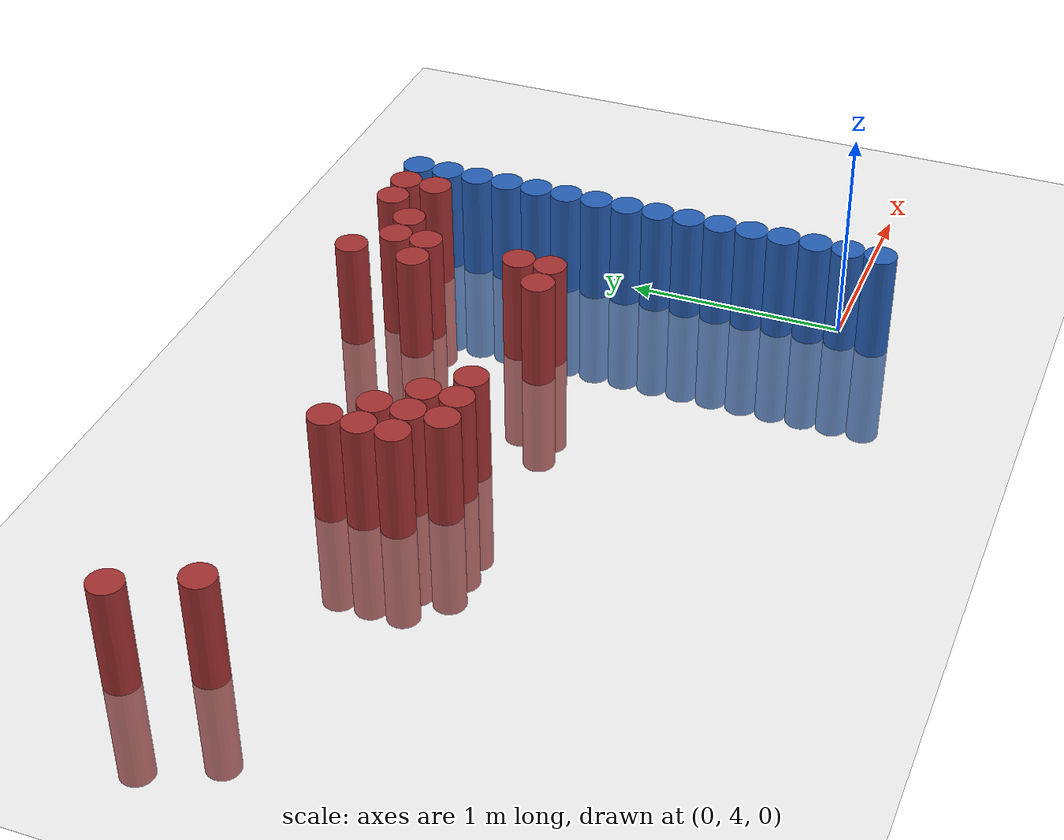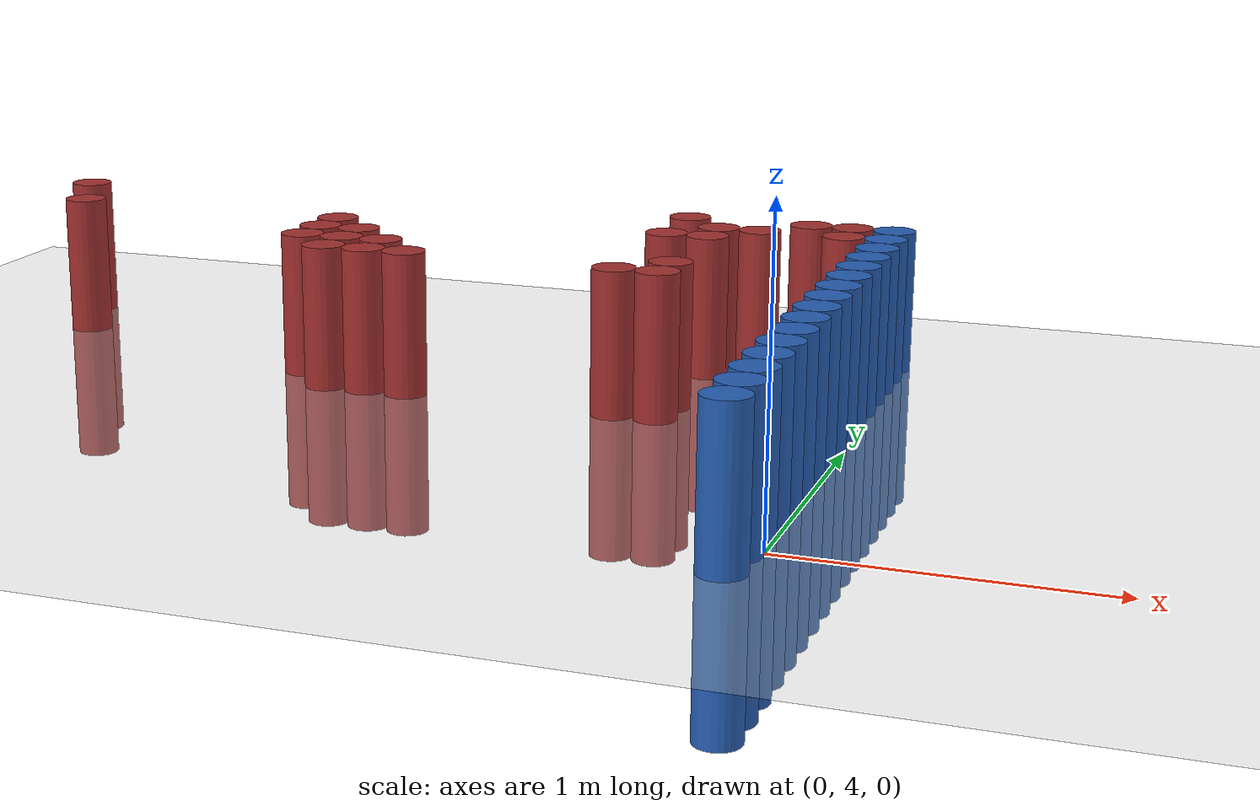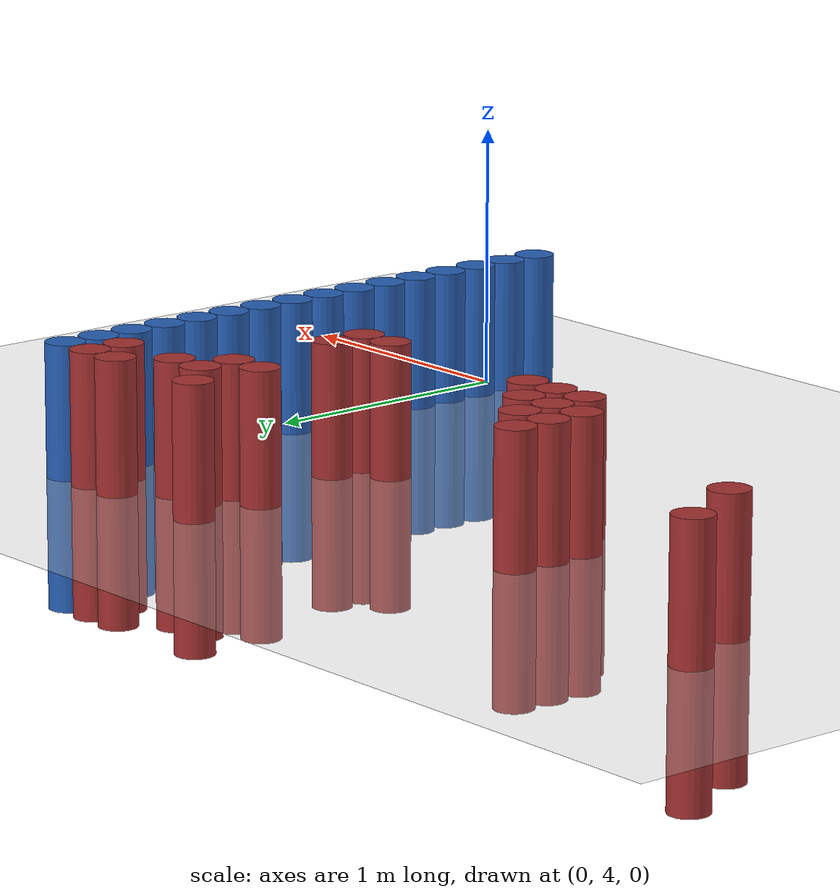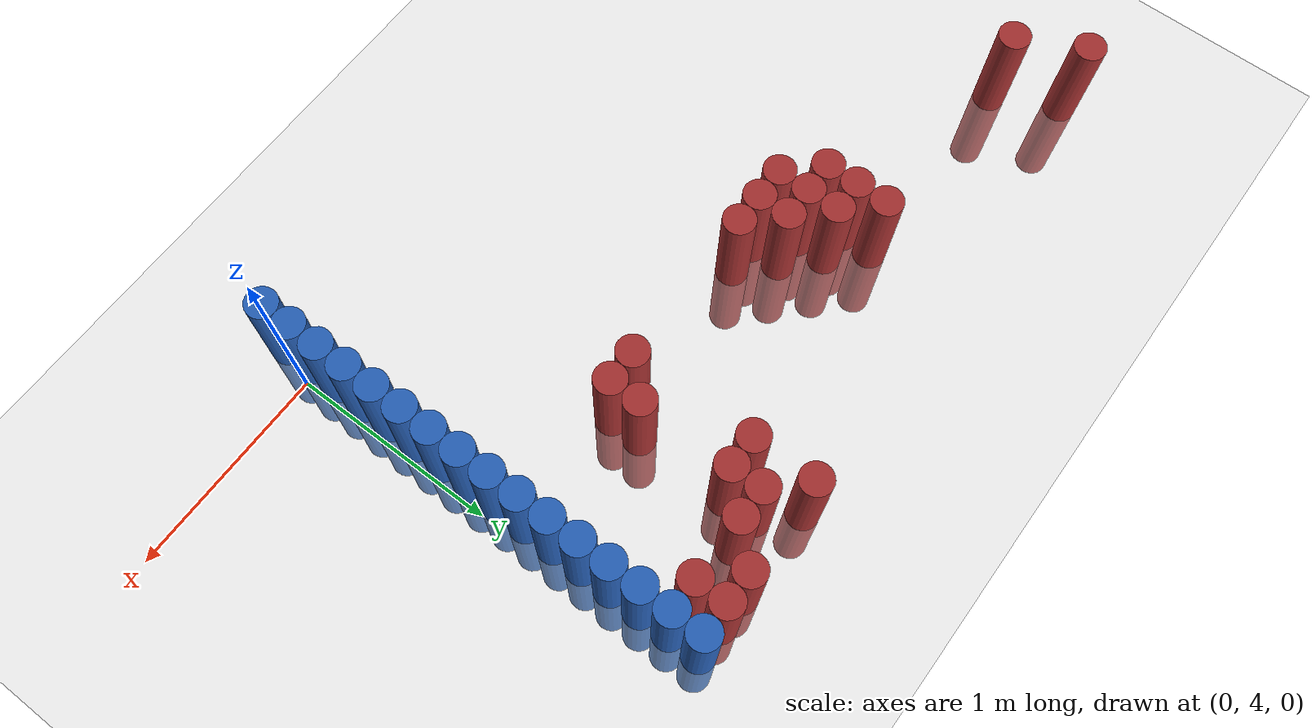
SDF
<sdf version="1.6">
 <world name="default">
  <model name="ground_plane">
   <static>1</static>
   <link name="link">
    <collision name="collision">
     <geometry><plane><normal>0 0 1</normal><size>100 100</size></plane></geometry>
     <surface><friction><ode><mu>100</mu><mu2>50</mu2></ode></friction></surface>
    </collision>
    <visual name="visual">
     <cast_shadows>0</cast_shadows>
     <geometry><plane><normal>0 0 1</normal><size>100 100</size></plane></geometry>
     <material>
      <script><uri>file://media/materials/scripts/gazebo.material</uri><name>Gazebo/Grey</name></script>
     </material>
    </visual>
   </link>
  </model>
  <model name="unit_cylinder_78">
   <static>1</static>
   <pose>-0.075000 3.825000 0.000000 0.000000 0.000000 0.000000</pose>
   <link name="link">
    <inertial>
     <mass>1</mass>
     <inertia><ixx>0.145833</ixx><ixy>0</ixy><ixz>0</ixz><iyy>0.145833</iyy><iyz>0</iyz><izz>0.125</izz></inertia>
    </inertial>
    <collision name="collision">
     <geometry><cylinder><radius>0.075000</radius><length>1</length></cylinder></geometry>
    </collision>
    <visual name="visual">
     <geometry><cylinder><radius>0.075000</radius><length>1</length></cylinder></geometry>
     <material>
      <ambient>0.152000 0.379000 0.720000 1</ambient>
      <diffuse>0.152000 0.379000 0.720000 1</diffuse>
     </material>
     <material>
      <script><name>Gazebo/Grey</name><uri>file://media/materials/scripts/gazebo.material</uri></script>
     </material>
    </visual>
    <sensor name="sensor_contact" type="contact"><contact><collision>collision</collision></contact></sensor>
   </link>
   <plugin filename="gz-sim-touchplugin-system" name="gz::sim::systems::TouchPlugin">
    <target>robot</target>
    <namespace>robot</namespace>
    <time>0.001</time>
    <enabled>true</enabled>
   </plugin>
  </model>
  <model name="unit_cylinder_80">
   <static>1</static>
   <pose>-0.075000 3.975000 0.000000 0.000000 0.000000 0.000000</pose>
   <link name="link">
    <inertial>
     <mass>1</mass>
     <inertia><ixx>0.145833</ixx><ixy>0</ixy><ixz>0</ixz><iyy>0.145833</iyy><iyz>0</iyz><izz>0.125</izz></inertia>
    </inertial>
    <collision name="collision">
     <geometry><cylinder><radius>0.075000</radius><length>1</length></cylinder></geometry>
    </collision>
    <visual name="visual">
     <geometry><cylinder><radius>0.075000</radius><length>1</length></cylinder></geometry>
     <material>
      <ambient>0.152000 0.379000 0.720000 1</ambient>
      <diffuse>0.152000 0.379000 0.720000 1</diffuse>
     </material>
     <material>
      <script><name>Gazebo/Grey</name><uri>file://media/materials/scripts/gazebo.material</uri></script>
     </material>
    </visual>
    <sensor name="sensor_contact" type="contact"><contact><collision>collision</collision></contact></sensor>
   </link>
   <plugin filename="gz-sim-touchplugin-system" name="gz::sim::systems::TouchPlugin">
    <target>robot</target>
    <namespace>robot</namespace>
    <time>0.001</time>
    <enabled>true</enabled>
   </plugin>
  </model>
  <model name="unit_cylinder_82">
   <static>1</static>
   <pose>-0.075000 4.125000 0.000000 0.000000 0.000000 0.000000</pose>
   <link name="link">
    <inertial>
     <mass>1</mass>
     <inertia><ixx>0.145833</ixx><ixy>0</ixy><ixz>0</ixz><iyy>0.145833</iyy><iyz>0</iyz><izz>0.125</izz></inertia>
    </inertial>
    <collision name="collision">
     <geometry><cylinder><radius>0.075000</radius><length>1</length></cylinder></geometry>
    </collision>
    <visual name="visual">
     <geometry><cylinder><radius>0.075000</radius><length>1</length></cylinder></geometry>
     <material>
      <ambient>0.152000 0.379000 0.720000 1</ambient>
      <diffuse>0.152000 0.379000 0.720000 1</diffuse>
     </material>
     <material>
      <script><name>Gazebo/Grey</name><uri>file://media/materials/scripts/gazebo.material</uri></script>
     </material>
    </visual>
    <sensor name="sensor_contact" type="contact"><contact><collision>collision</collision></contact></sensor>
   </link>
   <plugin filename="gz-sim-touchplugin-system" name="gz::sim::systems::TouchPlugin">
    <target>robot</target>
    <namespace>robot</namespace>
    <time>0.001</time>
    <enabled>true</enabled>
   </plugin>
  </model>
  <model name="unit_cylinder_84">
   <static>1</static>
   <pose>-0.075000 4.275000 0.000000 0.000000 0.000000 0.000000</pose>
   <link name="link">
    <inertial>
     <mass>1</mass>
     <inertia><ixx>0.145833</ixx><ixy>0</ixy><ixz>0</ixz><iyy>0.145833</iyy><iyz>0</iyz><izz>0.125</izz></inertia>
    </inertial>
    <collision name="collision">
     <geometry><cylinder><radius>0.075000</radius><length>1</length></cylinder></geometry>
    </collision>
    <visual name="visual">
     <geometry><cylinder><radius>0.075000</radius><length>1</length></cylinder></geometry>
     <material>
      <ambient>0.152000 0.379000 0.720000 1</ambient>
      <diffuse>0.152000 0.379000 0.720000 1</diffuse>
     </material>
     <material>
      <script><name>Gazebo/Grey</name><uri>file://media/materials/scripts/gazebo.material</uri></script>
     </material>
    </visual>
    <sensor name="sensor_contact" type="contact"><contact><collision>collision</collision></contact></sensor>
   </link>
   <plugin filename="gz-sim-touchplugin-system" name="gz::sim::systems::TouchPlugin">
    <target>robot</target>
    <namespace>robot</namespace>
    <time>0.001</time>
    <enabled>true</enabled>
   </plugin>
  </model>
  <model name="unit_cylinder_86">
   <static>1</static>
   <pose>-0.075000 4.425000 0.000000 0.000000 0.000000 0.000000</pose>
   <link name="link">
    <inertial>
     <mass>1</mass>
     <inertia><ixx>0.145833</ixx><ixy>0</ixy><ixz>0</ixz><iyy>0.145833</iyy><iyz>0</iyz><izz>0.125</izz></inertia>
    </inertial>
    <collision name="collision">
     <geometry><cylinder><radius>0.075000</radius><length>1</length></cylinder></geometry>
    </collision>
    <visual name="visual">
     <geometry><cylinder><radius>0.075000</radius><length>1</length></cylinder></geometry>
     <material>
      <ambient>0.152000 0.379000 0.720000 1</ambient>
      <diffuse>0.152000 0.379000 0.720000 1</diffuse>
     </material>
     <material>
      <script><name>Gazebo/Grey</name><uri>file://media/materials/scripts/gazebo.material</uri></script>
     </material>
    </visual>
    <sensor name="sensor_contact" type="contact"><contact><collision>collision</collision></contact></sensor>
   </link>
   <plugin filename="gz-sim-touchplugin-system" name="gz::sim::systems::TouchPlugin">
    <target>robot</target>
    <namespace>robot</namespace>
    <time>0.001</time>
    <enabled>true</enabled>
   </plugin>
  </model>
  <model name="unit_cylinder_88">
   <static>1</static>
   <pose>-0.075000 4.575000 0.000000 0.000000 0.000000 0.000000</pose>
   <link name="link">
    <inertial>
     <mass>1</mass>
     <inertia><ixx>0.145833</ixx><ixy>0</ixy><ixz>0</ixz><iyy>0.145833</iyy><iyz>0</iyz><izz>0.125</izz></inertia>
    </inertial>
    <collision name="collision">
     <geometry><cylinder><radius>0.075000</radius><length>1</length></cylinder></geometry>
    </collision>
    <visual name="visual">
     <geometry><cylinder><radius>0.075000</radius><length>1</length></cylinder></geometry>
     <material>
      <ambient>0.152000 0.379000 0.720000 1</ambient>
      <diffuse>0.152000 0.379000 0.720000 1</diffuse>
     </material>
     <material>
      <script><name>Gazebo/Grey</name><uri>file://media/materials/scripts/gazebo.material</uri></script>
     </material>
    </visual>
    <sensor name="sensor_contact" type="contact"><contact><collision>collision</collision></contact></sensor>
   </link>
   <plugin filename="gz-sim-touchplugin-system" name="gz::sim::systems::TouchPlugin">
    <target>robot</target>
    <namespace>robot</namespace>
    <time>0.001</time>
    <enabled>true</enabled>
   </plugin>
  </model>
  <model name="unit_cylinder_90">
   <static>1</static>
   <pose>-0.075000 4.725000 0.000000 0.000000 0.000000 0.000000</pose>
   <link name="link">
    <inertial>
     <mass>1</mass>
     <inertia><ixx>0.145833</ixx><ixy>0</ixy><ixz>0</ixz><iyy>0.145833</iyy><iyz>0</iyz><izz>0.125</izz></inertia>
    </inertial>
    <collision name="collision">
     <geometry><cylinder><radius>0.075000</radius><length>1</length></cylinder></geometry>
    </collision>
    <visual name="visual">
     <geometry><cylinder><radius>0.075000</radius><length>1</length></cylinder></geometry>
     <material>
      <ambient>0.152000 0.379000 0.720000 1</ambient>
      <diffuse>0.152000 0.379000 0.720000 1</diffuse>
     </material>
     <material>
      <script><name>Gazebo/Grey</name><uri>file://media/materials/scripts/gazebo.material</uri></script>
     </material>
    </visual>
    <sensor name="sensor_contact" type="contact"><contact><collision>collision</collision></contact></sensor>
   </link>
   <plugin filename="gz-sim-touchplugin-system" name="gz::sim::systems::TouchPlugin">
    <target>robot</target>
    <namespace>robot</namespace>
    <time>0.001</time>
    <enabled>true</enabled>
   </plugin>
  </model>
  <model name="unit_cylinder_92">
   <static>1</static>
   <pose>-0.075000 4.875000 0.000000 0.000000 0.000000 0.000000</pose>
   <link name="link">
    <inertial>
     <mass>1</mass>
     <inertia><ixx>0.145833</ixx><ixy>0</ixy><ixz>0</ixz><iyy>0.145833</iyy><iyz>0</iyz><izz>0.125</izz></inertia>
    </inertial>
    <collision name="collision">
     <geometry><cylinder><radius>0.075000</radius><length>1</length></cylinder></geometry>
    </collision>
    <visual name="visual">
     <geometry><cylinder><radius>0.075000</radius><length>1</length></cylinder></geometry>
     <material>
      <ambient>0.152000 0.379000 0.720000 1</ambient>
      <diffuse>0.152000 0.379000 0.720000 1</diffuse>
     </material>
     <material>
      <script><name>Gazebo/Grey</name><uri>file://media/materials/scripts/gazebo.material</uri></script>
     </material>
    </visual>
    <sensor name="sensor_contact" type="contact"><contact><collision>collision</collision></contact></sensor>
   </link>
   <plugin filename="gz-sim-touchplugin-system" name="gz::sim::systems::TouchPlugin">
    <target>robot</target>
    <namespace>robot</namespace>
    <time>0.001</time>
    <enabled>true</enabled>
   </plugin>
  </model>
  <model name="unit_cylinder_94">
   <static>1</static>
   <pose>-0.075000 5.025000 0.000000 0.000000 0.000000 0.000000</pose>
   <link name="link">
    <inertial>
     <mass>1</mass>
     <inertia><ixx>0.145833</ixx><ixy>0</ixy><ixz>0</ixz><iyy>0.145833</iyy><iyz>0</iyz><izz>0.125</izz></inertia>
    </inertial>
    <collision name="collision">
     <geometry><cylinder><radius>0.075000</radius><length>1</length></cylinder></geometry>
    </collision>
    <visual name="visual">
     <geometry><cylinder><radius>0.075000</radius><length>1</length></cylinder></geometry>
     <material>
      <ambient>0.152000 0.379000 0.720000 1</ambient>
      <diffuse>0.152000 0.379000 0.720000 1</diffuse>
     </material>
     <material>
      <script><name>Gazebo/Grey</name><uri>file://media/materials/scripts/gazebo.material</uri></script>
     </material>
    </visual>
    <sensor name="sensor_contact" type="contact"><contact><collision>collision</collision></contact></sensor>
   </link>
   <plugin filename="gz-sim-touchplugin-system" name="gz::sim::systems::TouchPlugin">
    <target>robot</target>
    <namespace>robot</namespace>
    <time>0.001</time>
    <enabled>true</enabled>
   </plugin>
  </model>
  <model name="unit_cylinder_200">
   <static>1</static>
   <pose>-3.225000 5.925000 0.000000 0.000000 0.000000 0.000000</pose>
   <link name="link">
    <inertial>
     <mass>1</mass>
     <inertia><ixx>0.145833</ixx><ixy>0</ixy><ixz>0</ixz><iyy>0.145833</iyy><iyz>0</iyz><izz>0.125</izz></inertia>
    </inertial>
    <collision name="collision">
     <geometry><cylinder><radius>0.075000</radius><length>1</length></cylinder></geometry>
    </collision>
    <visual name="visual">
     <geometry><cylinder><radius>0.075000</radius><length>1</length></cylinder></geometry>
     <material>
      <ambient>0.648000 0.192000 0.192000 1</ambient>
      <diffuse>0.648000 0.192000 0.192000 1</diffuse>
     </material>
     <material>
      <script><name>Gazebo/Grey</name><uri>file://media/materials/scripts/gazebo.material</uri></script>
     </material>
    </visual>
    <sensor name="sensor_contact" type="contact"><contact><collision>collision</collision></contact></sensor>
   </link>
   <plugin filename="gz-sim-touchplugin-system" name="gz::sim::systems::TouchPlugin">
    <target>robot</target>
    <namespace>robot</namespace>
    <time>0.001</time>
    <enabled>true</enabled>
   </plugin>
  </model>
  <model name="unit_cylinder_207">
   <static>1</static>
   <pose>-3.075000 5.625000 0.000000 0.000000 0.000000 0.000000</pose>
   <link name="link">
    <inertial>
     <mass>1</mass>
     <inertia><ixx>0.145833</ixx><ixy>0</ixy><ixz>0</ixz><iyy>0.145833</iyy><iyz>0</iyz><izz>0.125</izz></inertia>
    </inertial>
    <collision name="collision">
     <geometry><cylinder><radius>0.075000</radius><length>1</length></cylinder></geometry>
    </collision>
    <visual name="visual">
     <geometry><cylinder><radius>0.075000</radius><length>1</length></cylinder></geometry>
     <material>
      <ambient>0.648000 0.192000 0.192000 1</ambient>
      <diffuse>0.648000 0.192000 0.192000 1</diffuse>
     </material>
     <material>
      <script><name>Gazebo/Grey</name><uri>file://media/materials/scripts/gazebo.material</uri></script>
     </material>
    </visual>
    <sensor name="sensor_contact" type="contact"><contact><collision>collision</collision></contact></sensor>
   </link>
   <plugin filename="gz-sim-touchplugin-system" name="gz::sim::systems::TouchPlugin">
    <target>robot</target>
    <namespace>robot</namespace>
    <time>0.001</time>
    <enabled>true</enabled>
   </plugin>
  </model>
  <model name="unit_cylinder_220">
   <static>1</static>
   <pose>-2.025000 5.325000 0.000000 0.000000 0.000000 0.000000</pose>
   <link name="link">
    <inertial>
     <mass>1</mass>
     <inertia><ixx>0.145833</ixx><ixy>0</ixy><ixz>0</ixz><iyy>0.145833</iyy><iyz>0</iyz><izz>0.125</izz></inertia>
    </inertial>
    <collision name="collision">
     <geometry><cylinder><radius>0.075000</radius><length>1</length></cylinder></geometry>
    </collision>
    <visual name="visual">
     <geometry><cylinder><radius>0.075000</radius><length>1</length></cylinder></geometry>
     <material>
      <ambient>0.648000 0.192000 0.192000 1</ambient>
      <diffuse>0.648000 0.192000 0.192000 1</diffuse>
     </material>
     <material>
      <script><name>Gazebo/Grey</name><uri>file://media/materials/scripts/gazebo.material</uri></script>
     </material>
    </visual>
    <sensor name="sensor_contact" type="contact"><contact><collision>collision</collision></contact></sensor>
   </link>
   <plugin filename="gz-sim-touchplugin-system" name="gz::sim::systems::TouchPlugin">
    <target>robot</target>
    <namespace>robot</namespace>
    <time>0.001</time>
    <enabled>true</enabled>
   </plugin>
  </model>
  <model name="unit_cylinder_221">
   <static>1</static>
   <pose>-2.025000 5.475000 0.000000 0.000000 0.000000 0.000000</pose>
   <link name="link">
    <inertial>
     <mass>1</mass>
     <inertia><ixx>0.145833</ixx><ixy>0</ixy><ixz>0</ixz><iyy>0.145833</iyy><iyz>0</iyz><izz>0.125</izz></inertia>
    </inertial>
    <collision name="collision">
     <geometry><cylinder><radius>0.075000</radius><length>1</length></cylinder></geometry>
    </collision>
    <visual name="visual">
     <geometry><cylinder><radius>0.075000</radius><length>1</length></cylinder></geometry>
     <material>
      <ambient>0.648000 0.192000 0.192000 1</ambient>
      <diffuse>0.648000 0.192000 0.192000 1</diffuse>
     </material>
     <material>
      <script><name>Gazebo/Grey</name><uri>file://media/materials/scripts/gazebo.material</uri></script>
     </material>
    </visual>
    <sensor name="sensor_contact" type="contact"><contact><collision>collision</collision></contact></sensor>
   </link>
   <plugin filename="gz-sim-touchplugin-system" name="gz::sim::systems::TouchPlugin">
    <target>robot</target>
    <namespace>robot</namespace>
    <time>0.001</time>
    <enabled>true</enabled>
   </plugin>
  </model>
  <model name="unit_cylinder_222">
   <static>1</static>
   <pose>-2.025000 5.625000 0.000000 0.000000 0.000000 0.000000</pose>
   <link name="link">
    <inertial>
     <mass>1</mass>
     <inertia><ixx>0.145833</ixx><ixy>0</ixy><ixz>0</ixz><iyy>0.145833</iyy><iyz>0</iyz><izz>0.125</izz></inertia>
    </inertial>
    <collision name="collision">
     <geometry><cylinder><radius>0.075000</radius><length>1</length></cylinder></geometry>
    </collision>
    <visual name="visual">
     <geometry><cylinder><radius>0.075000</radius><length>1</length></cylinder></geometry>
     <material>
      <ambient>0.648000 0.192000 0.192000 1</ambient>
      <diffuse>0.648000 0.192000 0.192000 1</diffuse>
     </material>
     <material>
      <script><name>Gazebo/Grey</name><uri>file://media/materials/scripts/gazebo.material</uri></script>
     </material>
    </visual>
    <sensor name="sensor_contact" type="contact"><contact><collision>collision</collision></contact></sensor>
   </link>
   <plugin filename="gz-sim-touchplugin-system" name="gz::sim::systems::TouchPlugin">
    <target>robot</target>
    <namespace>robot</namespace>
    <time>0.001</time>
    <enabled>true</enabled>
   </plugin>
  </model>
  <model name="unit_cylinder_224">
   <static>1</static>
   <pose>-1.875000 5.175000 0.000000 0.000000 0.000000 0.000000</pose>
   <link name="link">
    <inertial>
     <mass>1</mass>
     <inertia><ixx>0.145833</ixx><ixy>0</ixy><ixz>0</ixz><iyy>0.145833</iyy><iyz>0</iyz><izz>0.125</izz></inertia>
    </inertial>
    <collision name="collision">
     <geometry><cylinder><radius>0.075000</radius><length>1</length></cylinder></geometry>
    </collision>
    <visual name="visual">
     <geometry><cylinder><radius>0.075000</radius><length>1</length></cylinder></geometry>
     <material>
      <ambient>0.648000 0.192000 0.192000 1</ambient>
      <diffuse>0.648000 0.192000 0.192000 1</diffuse>
     </material>
     <material>
      <script><name>Gazebo/Grey</name><uri>file://media/materials/scripts/gazebo.material</uri></script>
     </material>
    </visual>
    <sensor name="sensor_contact" type="contact"><contact><collision>collision</collision></contact></sensor>
   </link>
   <plugin filename="gz-sim-touchplugin-system" name="gz::sim::systems::TouchPlugin">
    <target>robot</target>
    <namespace>robot</namespace>
    <time>0.001</time>
    <enabled>true</enabled>
   </plugin>
  </model>
  <model name="unit_cylinder_225">
   <static>1</static>
   <pose>-1.875000 5.325000 0.000000 0.000000 0.000000 0.000000</pose>
   <link name="link">
    <inertial>
     <mass>1</mass>
     <inertia><ixx>0.145833</ixx><ixy>0</ixy><ixz>0</ixz><iyy>0.145833</iyy><iyz>0</iyz><izz>0.125</izz></inertia>
    </inertial>
    <collision name="collision">
     <geometry><cylinder><radius>0.075000</radius><length>1</length></cylinder></geometry>
    </collision>
    <visual name="visual">
     <geometry><cylinder><radius>0.075000</radius><length>1</length></cylinder></geometry>
     <material>
      <ambient>0.648000 0.192000 0.192000 1</ambient>
      <diffuse>0.648000 0.192000 0.192000 1</diffuse>
     </material>
     <material>
      <script><name>Gazebo/Grey</name><uri>file://media/materials/scripts/gazebo.material</uri></script>
     </material>
    </visual>
    <sensor name="sensor_contact" type="contact"><contact><collision>collision</collision></contact></sensor>
   </link>
   <plugin filename="gz-sim-touchplugin-system" name="gz::sim::systems::TouchPlugin">
    <target>robot</target>
    <namespace>robot</namespace>
    <time>0.001</time>
    <enabled>true</enabled>
   </plugin>
  </model>
  <model name="unit_cylinder_226">
   <static>1</static>
   <pose>-1.875000 5.475000 0.000000 0.000000 0.000000 0.000000</pose>
   <link name="link">
    <inertial>
     <mass>1</mass>
     <inertia><ixx>0.145833</ixx><ixy>0</ixy><ixz>0</ixz><iyy>0.145833</iyy><iyz>0</iyz><izz>0.125</izz></inertia>
    </inertial>
    <collision name="collision">
     <geometry><cylinder><radius>0.075000</radius><length>1</length></cylinder></geometry>
    </collision>
    <visual name="visual">
     <geometry><cylinder><radius>0.075000</radius><length>1</length></cylinder></geometry>
     <material>
      <ambient>0.648000 0.192000 0.192000 1</ambient>
      <diffuse>0.648000 0.192000 0.192000 1</diffuse>
     </material>
     <material>
      <script><name>Gazebo/Grey</name><uri>file://media/materials/scripts/gazebo.material</uri></script>
     </material>
    </visual>
    <sensor name="sensor_contact" type="contact"><contact><collision>collision</collision></contact></sensor>
   </link>
   <plugin filename="gz-sim-touchplugin-system" name="gz::sim::systems::TouchPlugin">
    <target>robot</target>
    <namespace>robot</namespace>
    <time>0.001</time>
    <enabled>true</enabled>
   </plugin>
  </model>
  <model name="unit_cylinder_231">
   <static>1</static>
   <pose>-1.725000 5.175000 0.000000 0.000000 0.000000 0.000000</pose>
   <link name="link">
    <inertial>
     <mass>1</mass>
     <inertia><ixx>0.145833</ixx><ixy>0</ixy><ixz>0</ixz><iyy>0.145833</iyy><iyz>0</iyz><izz>0.125</izz></inertia>
    </inertial>
    <collision name="collision">
     <geometry><cylinder><radius>0.075000</radius><length>1</length></cylinder></geometry>
    </collision>
    <visual name="visual">
     <geometry><cylinder><radius>0.075000</radius><length>1</length></cylinder></geometry>
     <material>
      <ambient>0.648000 0.192000 0.192000 1</ambient>
      <diffuse>0.648000 0.192000 0.192000 1</diffuse>
     </material>
     <material>
      <script><name>Gazebo/Grey</name><uri>file://media/materials/scripts/gazebo.material</uri></script>
     </material>
    </visual>
    <sensor name="sensor_contact" type="contact"><contact><collision>collision</collision></contact></sensor>
   </link>
   <plugin filename="gz-sim-touchplugin-system" name="gz::sim::systems::TouchPlugin">
    <target>robot</target>
    <namespace>robot</namespace>
    <time>0.001</time>
    <enabled>true</enabled>
   </plugin>
  </model>
  <model name="unit_cylinder_232">
   <static>1</static>
   <pose>-1.725000 5.325000 0.000000 0.000000 0.000000 0.000000</pose>
   <link name="link">
    <inertial>
     <mass>1</mass>
     <inertia><ixx>0.145833</ixx><ixy>0</ixy><ixz>0</ixz><iyy>0.145833</iyy><iyz>0</iyz><izz>0.125</izz></inertia>
    </inertial>
    <collision name="collision">
     <geometry><cylinder><radius>0.075000</radius><length>1</length></cylinder></geometry>
    </collision>
    <visual name="visual">
     <geometry><cylinder><radius>0.075000</radius><length>1</length></cylinder></geometry>
     <material>
      <ambient>0.648000 0.192000 0.192000 1</ambient>
      <diffuse>0.648000 0.192000 0.192000 1</diffuse>
     </material>
     <material>
      <script><name>Gazebo/Grey</name><uri>file://media/materials/scripts/gazebo.material</uri></script>
     </material>
    </visual>
    <sensor name="sensor_contact" type="contact"><contact><collision>collision</collision></contact></sensor>
   </link>
   <plugin filename="gz-sim-touchplugin-system" name="gz::sim::systems::TouchPlugin">
    <target>robot</target>
    <namespace>robot</namespace>
    <time>0.001</time>
    <enabled>true</enabled>
   </plugin>
  </model>
  <model name="unit_cylinder_238">
   <static>1</static>
   <pose>-1.575000 5.175000 0.000000 0.000000 0.000000 0.000000</pose>
   <link name="link">
    <inertial>
     <mass>1</mass>
     <inertia><ixx>0.145833</ixx><ixy>0</ixy><ixz>0</ixz><iyy>0.145833</iyy><iyz>0</iyz><izz>0.125</izz></inertia>
    </inertial>
    <collision name="collision">
     <geometry><cylinder><radius>0.075000</radius><length>1</length></cylinder></geometry>
    </collision>
    <visual name="visual">
     <geometry><cylinder><radius>0.075000</radius><length>1</length></cylinder></geometry>
     <material>
      <ambient>0.648000 0.192000 0.192000 1</ambient>
      <diffuse>0.648000 0.192000 0.192000 1</diffuse>
     </material>
     <material>
      <script><name>Gazebo/Grey</name><uri>file://media/materials/scripts/gazebo.material</uri></script>
     </material>
    </visual>
    <sensor name="sensor_contact" type="contact"><contact><collision>collision</collision></contact></sensor>
   </link>
   <plugin filename="gz-sim-touchplugin-system" name="gz::sim::systems::TouchPlugin">
    <target>robot</target>
    <namespace>robot</namespace>
    <time>0.001</time>
    <enabled>true</enabled>
   </plugin>
  </model>
  <model name="unit_cylinder_273">
   <static>1</static>
   <pose>-0.825000 5.175000 0.000000 0.000000 0.000000 0.000000</pose>
   <link name="link">
    <inertial>
     <mass>1</mass>
     <inertia><ixx>0.145833</ixx><ixy>0</ixy><ixz>0</ixz><iyy>0.145833</iyy><iyz>0</iyz><izz>0.125</izz></inertia>
    </inertial>
    <collision name="collision">
     <geometry><cylinder><radius>0.075000</radius><length>1</length></cylinder></geometry>
    </collision>
    <visual name="visual">
     <geometry><cylinder><radius>0.075000</radius><length>1</length></cylinder></geometry>
     <material>
      <ambient>0.648000 0.192000 0.192000 1</ambient>
      <diffuse>0.648000 0.192000 0.192000 1</diffuse>
     </material>
     <material>
      <script><name>Gazebo/Grey</name><uri>file://media/materials/scripts/gazebo.material</uri></script>
     </material>
    </visual>
    <sensor name="sensor_contact" type="contact"><contact><collision>collision</collision></contact></sensor>
   </link>
   <plugin filename="gz-sim-touchplugin-system" name="gz::sim::systems::TouchPlugin">
    <target>robot</target>
    <namespace>robot</namespace>
    <time>0.001</time>
    <enabled>true</enabled>
   </plugin>
  </model>
  <model name="unit_cylinder_274">
   <static>1</static>
   <pose>-0.825000 5.775000 0.000000 0.000000 0.000000 0.000000</pose>
   <link name="link">
    <inertial>
     <mass>1</mass>
     <inertia><ixx>0.145833</ixx><ixy>0</ixy><ixz>0</ixz><iyy>0.145833</iyy><iyz>0</iyz><izz>0.125</izz></inertia>
    </inertial>
    <collision name="collision">
     <geometry><cylinder><radius>0.075000</radius><length>1</length></cylinder></geometry>
    </collision>
    <visual name="visual">
     <geometry><cylinder><radius>0.075000</radius><length>1</length></cylinder></geometry>
     <material>
      <ambient>0.648000 0.192000 0.192000 1</ambient>
      <diffuse>0.648000 0.192000 0.192000 1</diffuse>
     </material>
     <material>
      <script><name>Gazebo/Grey</name><uri>file://media/materials/scripts/gazebo.material</uri></script>
     </material>
    </visual>
    <sensor name="sensor_contact" type="contact"><contact><collision>collision</collision></contact></sensor>
   </link>
   <plugin filename="gz-sim-touchplugin-system" name="gz::sim::systems::TouchPlugin">
    <target>robot</target>
    <namespace>robot</namespace>
    <time>0.001</time>
    <enabled>true</enabled>
   </plugin>
  </model>
  <model name="unit_cylinder_275">
   <static>1</static>
   <pose>-0.825000 6.075000 0.000000 0.000000 0.000000 0.000000</pose>
   <link name="link">
    <inertial>
     <mass>1</mass>
     <inertia><ixx>0.145833</ixx><ixy>0</ixy><ixz>0</ixz><iyy>0.145833</iyy><iyz>0</iyz><izz>0.125</izz></inertia>
    </inertial>
    <collision name="collision">
     <geometry><cylinder><radius>0.075000</radius><length>1</length></cylinder></geometry>
    </collision>
    <visual name="visual">
     <geometry><cylinder><radius>0.075000</radius><length>1</length></cylinder></geometry>
     <material>
      <ambient>0.648000 0.192000 0.192000 1</ambient>
      <diffuse>0.648000 0.192000 0.192000 1</diffuse>
     </material>
     <material>
      <script><name>Gazebo/Grey</name><uri>file://media/materials/scripts/gazebo.material</uri></script>
     </material>
    </visual>
    <sensor name="sensor_contact" type="contact"><contact><collision>collision</collision></contact></sensor>
   </link>
   <plugin filename="gz-sim-touchplugin-system" name="gz::sim::systems::TouchPlugin">
    <target>robot</target>
    <namespace>robot</namespace>
    <time>0.001</time>
    <enabled>true</enabled>
   </plugin>
  </model>
  <model name="unit_cylinder_283">
   <static>1</static>
   <pose>-0.675000 5.175000 0.000000 0.000000 0.000000 0.000000</pose>
   <link name="link">
    <inertial>
     <mass>1</mass>
     <inertia><ixx>0.145833</ixx><ixy>0</ixy><ixz>0</ixz><iyy>0.145833</iyy><iyz>0</iyz><izz>0.125</izz></inertia>
    </inertial>
    <collision name="collision">
     <geometry><cylinder><radius>0.075000</radius><length>1</length></cylinder></geometry>
    </collision>
    <visual name="visual">
     <geometry><cylinder><radius>0.075000</radius><length>1</length></cylinder></geometry>
     <material>
      <ambient>0.648000 0.192000 0.192000 1</ambient>
      <diffuse>0.648000 0.192000 0.192000 1</diffuse>
     </material>
     <material>
      <script><name>Gazebo/Grey</name><uri>file://media/materials/scripts/gazebo.material</uri></script>
     </material>
    </visual>
    <sensor name="sensor_contact" type="contact"><contact><collision>collision</collision></contact></sensor>
   </link>
   <plugin filename="gz-sim-touchplugin-system" name="gz::sim::systems::TouchPlugin">
    <target>robot</target>
    <namespace>robot</namespace>
    <time>0.001</time>
    <enabled>true</enabled>
   </plugin>
  </model>
  <model name="unit_cylinder_284">
   <static>1</static>
   <pose>-0.675000 5.325000 0.000000 0.000000 0.000000 0.000000</pose>
   <link name="link">
    <inertial>
     <mass>1</mass>
     <inertia><ixx>0.145833</ixx><ixy>0</ixy><ixz>0</ixz><iyy>0.145833</iyy><iyz>0</iyz><izz>0.125</izz></inertia>
    </inertial>
    <collision name="collision">
     <geometry><cylinder><radius>0.075000</radius><length>1</length></cylinder></geometry>
    </collision>
    <visual name="visual">
     <geometry><cylinder><radius>0.075000</radius><length>1</length></cylinder></geometry>
     <material>
      <ambient>0.648000 0.192000 0.192000 1</ambient>
      <diffuse>0.648000 0.192000 0.192000 1</diffuse>
     </material>
     <material>
      <script><name>Gazebo/Grey</name><uri>file://media/materials/scripts/gazebo.material</uri></script>
     </material>
    </visual>
    <sensor name="sensor_contact" type="contact"><contact><collision>collision</collision></contact></sensor>
   </link>
   <plugin filename="gz-sim-touchplugin-system" name="gz::sim::systems::TouchPlugin">
    <target>robot</target>
    <namespace>robot</namespace>
    <time>0.001</time>
    <enabled>true</enabled>
   </plugin>
  </model>
  <model name="unit_cylinder_285">
   <static>1</static>
   <pose>-0.675000 5.775000 0.000000 0.000000 0.000000 0.000000</pose>
   <link name="link">
    <inertial>
     <mass>1</mass>
     <inertia><ixx>0.145833</ixx><ixy>0</ixy><ixz>0</ixz><iyy>0.145833</iyy><iyz>0</iyz><izz>0.125</izz></inertia>
    </inertial>
    <collision name="collision">
     <geometry><cylinder><radius>0.075000</radius><length>1</length></cylinder></geometry>
    </collision>
    <visual name="visual">
     <geometry><cylinder><radius>0.075000</radius><length>1</length></cylinder></geometry>
     <material>
      <ambient>0.648000 0.192000 0.192000 1</ambient>
      <diffuse>0.648000 0.192000 0.192000 1</diffuse>
     </material>
     <material>
      <script><name>Gazebo/Grey</name><uri>file://media/materials/scripts/gazebo.material</uri></script>
     </material>
    </visual>
    <sensor name="sensor_contact" type="contact"><contact><collision>collision</collision></contact></sensor>
   </link>
   <plugin filename="gz-sim-touchplugin-system" name="gz::sim::systems::TouchPlugin">
    <target>robot</target>
    <namespace>robot</namespace>
    <time>0.001</time>
    <enabled>true</enabled>
   </plugin>
  </model>
  <model name="unit_cylinder_286">
   <static>1</static>
   <pose>-0.675000 5.925000 0.000000 0.000000 0.000000 0.000000</pose>
   <link name="link">
    <inertial>
     <mass>1</mass>
     <inertia><ixx>0.145833</ixx><ixy>0</ixy><ixz>0</ixz><iyy>0.145833</iyy><iyz>0</iyz><izz>0.125</izz></inertia>
    </inertial>
    <collision name="collision">
     <geometry><cylinder><radius>0.075000</radius><length>1</length></cylinder></geometry>
    </collision>
    <visual name="visual">
     <geometry><cylinder><radius>0.075000</radius><length>1</length></cylinder></geometry>
     <material>
      <ambient>0.648000 0.192000 0.192000 1</ambient>
      <diffuse>0.648000 0.192000 0.192000 1</diffuse>
     </material>
     <material>
      <script><name>Gazebo/Grey</name><uri>file://media/materials/scripts/gazebo.material</uri></script>
     </material>
    </visual>
    <sensor name="sensor_contact" type="contact"><contact><collision>collision</collision></contact></sensor>
   </link>
   <plugin filename="gz-sim-touchplugin-system" name="gz::sim::systems::TouchPlugin">
    <target>robot</target>
    <namespace>robot</namespace>
    <time>0.001</time>
    <enabled>true</enabled>
   </plugin>
  </model>
  <model name="unit_cylinder_293">
   <static>1</static>
   <pose>-0.525000 5.925000 0.000000 0.000000 0.000000 0.000000</pose>
   <link name="link">
    <inertial>
     <mass>1</mass>
     <inertia><ixx>0.145833</ixx><ixy>0</ixy><ixz>0</ixz><iyy>0.145833</iyy><iyz>0</iyz><izz>0.125</izz></inertia>
    </inertial>
    <collision name="collision">
     <geometry><cylinder><radius>0.075000</radius><length>1</length></cylinder></geometry>
    </collision>
    <visual name="visual">
     <geometry><cylinder><radius>0.075000</radius><length>1</length></cylinder></geometry>
     <material>
      <ambient>0.648000 0.192000 0.192000 1</ambient>
      <diffuse>0.648000 0.192000 0.192000 1</diffuse>
     </material>
     <material>
      <script><name>Gazebo/Grey</name><uri>file://media/materials/scripts/gazebo.material</uri></script>
     </material>
    </visual>
    <sensor name="sensor_contact" type="contact"><contact><collision>collision</collision></contact></sensor>
   </link>
   <plugin filename="gz-sim-touchplugin-system" name="gz::sim::systems::TouchPlugin">
    <target>robot</target>
    <namespace>robot</namespace>
    <time>0.001</time>
    <enabled>true</enabled>
   </plugin>
  </model>
  <model name="unit_cylinder_300">
   <static>1</static>
   <pose>-0.375000 6.075000 0.000000 0.000000 0.000000 0.000000</pose>
   <link name="link">
    <inertial>
     <mass>1</mass>
     <inertia><ixx>0.145833</ixx><ixy>0</ixy><ixz>0</ixz><iyy>0.145833</iyy><iyz>0</iyz><izz>0.125</izz></inertia>
    </inertial>
    <collision name="collision">
     <geometry><cylinder><radius>0.075000</radius><length>1</length></cylinder></geometry>
    </collision>
    <visual name="visual">
     <geometry><cylinder><radius>0.075000</radius><length>1</length></cylinder></geometry>
     <material>
      <ambient>0.648000 0.192000 0.192000 1</ambient>
      <diffuse>0.648000 0.192000 0.192000 1</diffuse>
     </material>
     <material>
      <script><name>Gazebo/Grey</name><uri>file://media/materials/scripts/gazebo.material</uri></script>
     </material>
    </visual>
    <sensor name="sensor_contact" type="contact"><contact><collision>collision</collision></contact></sensor>
   </link>
   <plugin filename="gz-sim-touchplugin-system" name="gz::sim::systems::TouchPlugin">
    <target>robot</target>
    <namespace>robot</namespace>
    <time>0.001</time>
    <enabled>true</enabled>
   </plugin>
  </model>
  <model name="unit_cylinder_307">
   <static>1</static>
   <pose>-0.225000 5.925000 0.000000 0.000000 0.000000 0.000000</pose>
   <link name="link">
    <inertial>
     <mass>1</mass>
     <inertia><ixx>0.145833</ixx><ixy>0</ixy><ixz>0</ixz><iyy>0.145833</iyy><iyz>0</iyz><izz>0.125</izz></inertia>
    </inertial>
    <collision name="collision">
     <geometry><cylinder><radius>0.075000</radius><length>1</length></cylinder></geometry>
    </collision>
    <visual name="visual">
     <geometry><cylinder><radius>0.075000</radius><length>1</length></cylinder></geometry>
     <material>
      <ambient>0.648000 0.192000 0.192000 1</ambient>
      <diffuse>0.648000 0.192000 0.192000 1</diffuse>
     </material>
     <material>
      <script><name>Gazebo/Grey</name><uri>file://media/materials/scripts/gazebo.material</uri></script>
     </material>
    </visual>
    <sensor name="sensor_contact" type="contact"><contact><collision>collision</collision></contact></sensor>
   </link>
   <plugin filename="gz-sim-touchplugin-system" name="gz::sim::systems::TouchPlugin">
    <target>robot</target>
    <namespace>robot</namespace>
    <time>0.001</time>
    <enabled>true</enabled>
   </plugin>
  </model>
  <model name="unit_cylinder_308">
   <static>1</static>
   <pose>-0.225000 6.075000 0.000000 0.000000 0.000000 0.000000</pose>
   <link name="link">
    <inertial>
     <mass>1</mass>
     <inertia><ixx>0.145833</ixx><ixy>0</ixy><ixz>0</ixz><iyy>0.145833</iyy><iyz>0</iyz><izz>0.125</izz></inertia>
    </inertial>
    <collision name="collision">
     <geometry><cylinder><radius>0.075000</radius><length>1</length></cylinder></geometry>
    </collision>
    <visual name="visual">
     <geometry><cylinder><radius>0.075000</radius><length>1</length></cylinder></geometry>
     <material>
      <ambient>0.648000 0.192000 0.192000 1</ambient>
      <diffuse>0.648000 0.192000 0.192000 1</diffuse>
     </material>
     <material>
      <script><name>Gazebo/Grey</name><uri>file://media/materials/scripts/gazebo.material</uri></script>
     </material>
    </visual>
    <sensor name="sensor_contact" type="contact"><contact><collision>collision</collision></contact></sensor>
   </link>
   <plugin filename="gz-sim-touchplugin-system" name="gz::sim::systems::TouchPlugin">
    <target>robot</target>
    <namespace>robot</namespace>
    <time>0.001</time>
    <enabled>true</enabled>
   </plugin>
  </model>
  <model name="unit_cylinder_319">
   <static>1</static>
   <pose>-0.075000 5.175000 0.000000 0.000000 0.000000 0.000000</pose>
   <link name="link">
    <inertial>
     <mass>1</mass>
     <inertia><ixx>0.145833</ixx><ixy>0</ixy><ixz>0</ixz><iyy>0.145833</iyy><iyz>0</iyz><izz>0.125</izz></inertia>
    </inertial>
    <collision name="collision">
     <geometry><cylinder><radius>0.075000</radius><length>1</length></cylinder></geometry>
    </collision>
    <visual name="visual">
     <geometry><cylinder><radius>0.075000</radius><length>1</length></cylinder></geometry>
     <material>
      <ambient>0.152000 0.379000 0.720000 1</ambient>
      <diffuse>0.152000 0.379000 0.720000 1</diffuse>
     </material>
     <material>
      <script><name>Gazebo/Grey</name><uri>file://media/materials/scripts/gazebo.material</uri></script>
     </material>
    </visual>
    <sensor name="sensor_contact" type="contact"><contact><collision>collision</collision></contact></sensor>
   </link>
   <plugin filename="gz-sim-touchplugin-system" name="gz::sim::systems::TouchPlugin">
    <target>robot</target>
    <namespace>robot</namespace>
    <time>0.001</time>
    <enabled>true</enabled>
   </plugin>
  </model>
  <model name="unit_cylinder_320">
   <static>1</static>
   <pose>-0.075000 5.325000 0.000000 0.000000 0.000000 0.000000</pose>
   <link name="link">
    <inertial>
     <mass>1</mass>
     <inertia><ixx>0.145833</ixx><ixy>0</ixy><ixz>0</ixz><iyy>0.145833</iyy><iyz>0</iyz><izz>0.125</izz></inertia>
    </inertial>
    <collision name="collision">
     <geometry><cylinder><radius>0.075000</radius><length>1</length></cylinder></geometry>
    </collision>
    <visual name="visual">
     <geometry><cylinder><radius>0.075000</radius><length>1</length></cylinder></geometry>
     <material>
      <ambient>0.152000 0.379000 0.720000 1</ambient>
      <diffuse>0.152000 0.379000 0.720000 1</diffuse>
     </material>
     <material>
      <script><name>Gazebo/Grey</name><uri>file://media/materials/scripts/gazebo.material</uri></script>
     </material>
    </visual>
    <sensor name="sensor_contact" type="contact"><contact><collision>collision</collision></contact></sensor>
   </link>
   <plugin filename="gz-sim-touchplugin-system" name="gz::sim::systems::TouchPlugin">
    <target>robot</target>
    <namespace>robot</namespace>
    <time>0.001</time>
    <enabled>true</enabled>
   </plugin>
  </model>
  <model name="unit_cylinder_321">
   <static>1</static>
   <pose>-0.075000 5.475000 0.000000 0.000000 0.000000 0.000000</pose>
   <link name="link">
    <inertial>
     <mass>1</mass>
     <inertia><ixx>0.145833</ixx><ixy>0</ixy><ixz>0</ixz><iyy>0.145833</iyy><iyz>0</iyz><izz>0.125</izz></inertia>
    </inertial>
    <collision name="collision">
     <geometry><cylinder><radius>0.075000</radius><length>1</length></cylinder></geometry>
    </collision>
    <visual name="visual">
     <geometry><cylinder><radius>0.075000</radius><length>1</length></cylinder></geometry>
     <material>
      <ambient>0.152000 0.379000 0.720000 1</ambient>
      <diffuse>0.152000 0.379000 0.720000 1</diffuse>
     </material>
     <material>
      <script><name>Gazebo/Grey</name><uri>file://media/materials/scripts/gazebo.material</uri></script>
     </material>
    </visual>
    <sensor name="sensor_contact" type="contact"><contact><collision>collision</collision></contact></sensor>
   </link>
   <plugin filename="gz-sim-touchplugin-system" name="gz::sim::systems::TouchPlugin">
    <target>robot</target>
    <namespace>robot</namespace>
    <time>0.001</time>
    <enabled>true</enabled>
   </plugin>
  </model>
  <model name="unit_cylinder_322">
   <static>1</static>
   <pose>-0.075000 5.625000 0.000000 0.000000 0.000000 0.000000</pose>
   <link name="link">
    <inertial>
     <mass>1</mass>
     <inertia><ixx>0.145833</ixx><ixy>0</ixy><ixz>0</ixz><iyy>0.145833</iyy><iyz>0</iyz><izz>0.125</izz></inertia>
    </inertial>
    <collision name="collision">
     <geometry><cylinder><radius>0.075000</radius><length>1</length></cylinder></geometry>
    </collision>
    <visual name="visual">
     <geometry><cylinder><radius>0.075000</radius><length>1</length></cylinder></geometry>
     <material>
      <ambient>0.152000 0.379000 0.720000 1</ambient>
      <diffuse>0.152000 0.379000 0.720000 1</diffuse>
     </material>
     <material>
      <script><name>Gazebo/Grey</name><uri>file://media/materials/scripts/gazebo.material</uri></script>
     </material>
    </visual>
    <sensor name="sensor_contact" type="contact"><contact><collision>collision</collision></contact></sensor>
   </link>
   <plugin filename="gz-sim-touchplugin-system" name="gz::sim::systems::TouchPlugin">
    <target>robot</target>
    <namespace>robot</namespace>
    <time>0.001</time>
    <enabled>true</enabled>
   </plugin>
  </model>
  <model name="unit_cylinder_323">
   <static>1</static>
   <pose>-0.075000 5.775000 0.000000 0.000000 0.000000 0.000000</pose>
   <link name="link">
    <inertial>
     <mass>1</mass>
     <inertia><ixx>0.145833</ixx><ixy>0</ixy><ixz>0</ixz><iyy>0.145833</iyy><iyz>0</iyz><izz>0.125</izz></inertia>
    </inertial>
    <collision name="collision">
     <geometry><cylinder><radius>0.075000</radius><length>1</length></cylinder></geometry>
    </collision>
    <visual name="visual">
     <geometry><cylinder><radius>0.075000</radius><length>1</length></cylinder></geometry>
     <material>
      <ambient>0.152000 0.379000 0.720000 1</ambient>
      <diffuse>0.152000 0.379000 0.720000 1</diffuse>
     </material>
     <material>
      <script><name>Gazebo/Grey</name><uri>file://media/materials/scripts/gazebo.material</uri></script>
     </material>
    </visual>
    <sensor name="sensor_contact" type="contact"><contact><collision>collision</collision></contact></sensor>
   </link>
   <plugin filename="gz-sim-touchplugin-system" name="gz::sim::systems::TouchPlugin">
    <target>robot</target>
    <namespace>robot</namespace>
    <time>0.001</time>
    <enabled>true</enabled>
   </plugin>
  </model>
  <model name="unit_cylinder_324">
   <static>1</static>
   <pose>-0.075000 5.925000 0.000000 0.000000 0.000000 0.000000</pose>
   <link name="link">
    <inertial>
     <mass>1</mass>
     <inertia><ixx>0.145833</ixx><ixy>0</ixy><ixz>0</ixz><iyy>0.145833</iyy><iyz>0</iyz><izz>0.125</izz></inertia>
    </inertial>
    <collision name="collision">
     <geometry><cylinder><radius>0.075000</radius><length>1</length></cylinder></geometry>
    </collision>
    <visual name="visual">
     <geometry><cylinder><radius>0.075000</radius><length>1</length></cylinder></geometry>
     <material>
      <ambient>0.152000 0.379000 0.720000 1</ambient>
      <diffuse>0.152000 0.379000 0.720000 1</diffuse>
     </material>
     <material>
      <script><name>Gazebo/Grey</name><uri>file://media/materials/scripts/gazebo.material</uri></script>
     </material>
    </visual>
    <sensor name="sensor_contact" type="contact"><contact><collision>collision</collision></contact></sensor>
   </link>
   <plugin filename="gz-sim-touchplugin-system" name="gz::sim::systems::TouchPlugin">
    <target>robot</target>
    <namespace>robot</namespace>
    <time>0.001</time>
    <enabled>true</enabled>
   </plugin>
  </model>
  <model name="unit_cylinder_325">
   <static>1</static>
   <pose>-0.075000 6.075000 0.000000 0.000000 0.000000 0.000000</pose>
   <link name="link">
    <inertial>
     <mass>1</mass>
     <inertia><ixx>0.145833</ixx><ixy>0</ixy><ixz>0</ixz><iyy>0.145833</iyy><iyz>0</iyz><izz>0.125</izz></inertia>
    </inertial>
    <collision name="collision">
     <geometry><cylinder><radius>0.075000</radius><length>1</length></cylinder></geometry>
    </collision>
    <visual name="visual">
     <geometry><cylinder><radius>0.075000</radius><length>1</length></cylinder></geometry>
     <material>
      <ambient>0.152000 0.379000 0.720000 1</ambient>
      <diffuse>0.152000 0.379000 0.720000 1</diffuse>
     </material>
     <material>
      <script><name>Gazebo/Grey</name><uri>file://media/materials/scripts/gazebo.material</uri></script>
     </material>
    </visual>
    <sensor name="sensor_contact" type="contact"><contact><collision>collision</collision></contact></sensor>
   </link>
   <plugin filename="gz-sim-touchplugin-system" name="gz::sim::systems::TouchPlugin">
    <target>robot</target>
    <namespace>robot</namespace>
    <time>0.001</time>
    <enabled>true</enabled>
   </plugin>
  </model>
 </world>
</sdf>
